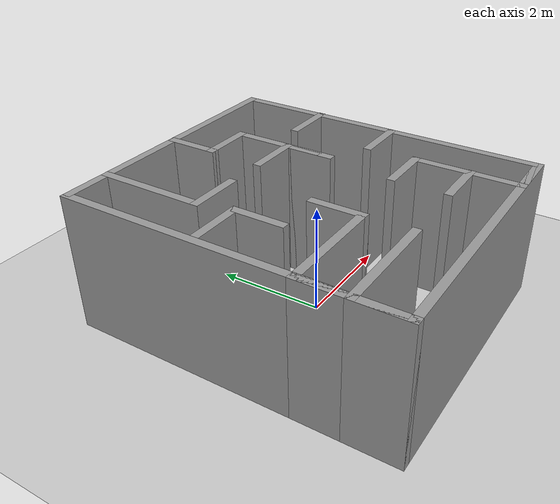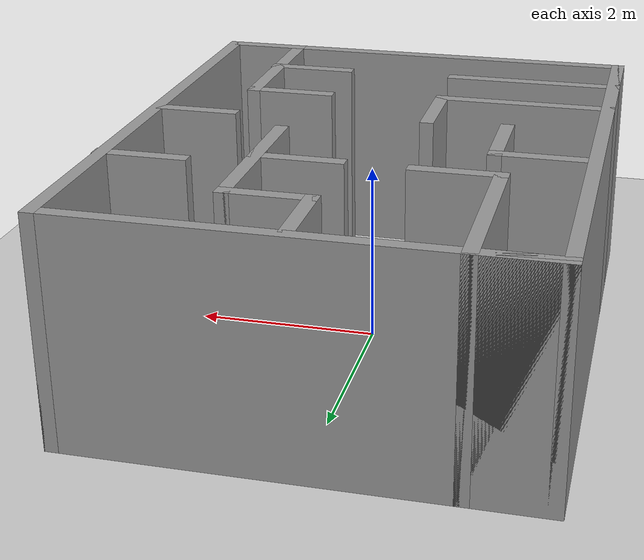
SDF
<sdf version="1.6">
 <world name="default">
  <light name="sun" type="directional">
   <pose>0 0 10 0 -0 0</pose>
   <diffuse>0.8 0.8 0.8 1</diffuse>
   <specular>0.2 0.2 0.2 1</specular>
   <attenuation>
    <range>1000</range>
    <constant>0.9</constant>
    <linear>0.01</linear>
    <quadratic>0.001</quadratic>
   </attenuation>
   <direction>-0.5 0.1 -0.9</direction>
  </light>
  <model name="ground_plane">
   <static>1</static>
   <link name="link">
    <collision name="collision">
     <geometry><plane><normal>0 0 1</normal><size>100 100</size></plane></geometry>
     <surface><friction><ode><mu>100</mu><mu2>50</mu2></ode></friction></surface>
    </collision>
    <visual name="visual">
     <cast_shadows>0</cast_shadows>
     <geometry><plane><normal>0 0 1</normal><size>100 100</size></plane></geometry>
     <material>
      <script><uri>file://media/materials/scripts/gazebo.material</uri><name>Gazebo/Grey</name></script>
     </material>
    </visual>
   </link>
  </model>
  <gravity>0 0 -9.8</gravity>
  <magnetic_field>6e-06 2.3e-05 -4.2e-05</magnetic_field>
  <atmosphere type="adiabatic"/>
  <physics name="default_physics" default="0" type="ode">
   <max_step_size>0.001</max_step_size>
   <real_time_factor>1</real_time_factor>
   <real_time_update_rate>1000</real_time_update_rate>
  </physics>
  <scene><ambient>0.4 0.4 0.4 1</ambient><background>0.7 0.7 0.7 1</background><shadows>1</shadows></scene>
  <spherical_coordinates>
   <surface_model>EARTH_WGS84</surface_model>
   <latitude_deg>0</latitude_deg>
   <longitude_deg>0</longitude_deg>
   <elevation>0</elevation>
   <heading_deg>0</heading_deg>
  </spherical_coordinates>
  <model name="building2">
   <pose>0.039114 0.111863 0 0 -0 0</pose>
   <link name="Wall_0">
    <collision name="Wall_0_Collision">
     <geometry><box><size>5 0.15 2.5</size></box></geometry>
     <pose>0 0 1.25 0 -0 0</pose>
    </collision>
    <visual name="Wall_0_Visual">
     <pose>0 0 1.25 0 -0 0</pose>
     <geometry><box><size>5 0.15 2.5</size></box></geometry>
     <material>
      <script><uri>file://media/materials/scripts/gazebo.material</uri><name>Gazebo/Grey</name></script>
      <ambient>1 1 1 1</ambient>
     </material>
     <meta><layer>0</layer></meta>
    </visual>
    <pose>-0.006356 2.925 0 0 -0 0</pose>
   </link>
   <link name="Wall_1">
    <collision name="Wall_1_Collision">
     <geometry><box><size>6 0.15 2.5</size></box></geometry>
     <pose>0 0 1.25 0 -0 0</pose>
    </collision>
    <visual name="Wall_1_Visual">
     <pose>0 0 1.25 0 -0 0</pose>
     <geometry><box><size>6 0.15 2.5</size></box></geometry>
     <material>
      <script><uri>file://media/materials/scripts/gazebo.material</uri><name>Gazebo/Grey</name></script>
      <ambient>1 1 1 1</ambient>
     </material>
     <meta><layer>0</layer></meta>
    </visual>
    <pose>2.41864 0 0 0 0 -1.5708</pose>
   </link>
   <link name="Wall_10">
    <collision name="Wall_10_Collision">
     <geometry><box><size>2 0.15 2.5</size></box></geometry>
     <pose>0 0 1.25 0 -0 0</pose>
    </collision>
    <visual name="Wall_10_Visual">
     <pose>0 0 1.25 0 -0 0</pose>
     <geometry><box><size>2 0.15 2.5</size></box></geometry>
     <material>
      <script><uri>file://media/materials/scripts/gazebo.material</uri><name>Gazebo/Grey</name></script>
      <ambient>1 1 1 1</ambient>
     </material>
     <meta><layer>0</layer></meta>
    </visual>
    <pose>-1.50636 -2.075 0 0 -0 0</pose>
   </link>
   <link name="Wall_12">
    <collision name="Wall_12_Collision">
     <geometry><box><size>1 0.15 2.5</size></box></geometry>
     <pose>0 0 1.25 0 -0 0</pose>
    </collision>
    <visual name="Wall_12_Visual">
     <pose>0 0 1.25 0 -0 0</pose>
     <geometry><box><size>1 0.15 2.5</size></box></geometry>
     <material>
      <script><uri>file://media/materials/scripts/gazebo.material</uri><name>Gazebo/Grey</name></script>
      <ambient>1 1 1 1</ambient>
     </material>
     <meta><layer>0</layer></meta>
    </visual>
    <pose>-2.43136 -1.65 0 0 -0 1.5708</pose>
   </link>
   <link name="Wall_13">
    <collision name="Wall_13_Collision">
     <geometry><box><size>2 0.15 2.5</size></box></geometry>
     <pose>0 0 1.25 0 -0 0</pose>
    </collision>
    <visual name="Wall_13_Visual">
     <pose>0 0 1.25 0 -0 0</pose>
     <geometry><box><size>2 0.15 2.5</size></box></geometry>
     <material>
      <script><uri>file://media/materials/scripts/gazebo.material</uri><name>Gazebo/Grey</name></script>
      <ambient>1 1 1 1</ambient>
     </material>
     <meta><layer>0</layer></meta>
    </visual>
    <pose>-1.50636 -1.225 0 0 -0 0</pose>
   </link>
   <link name="Wall_14">
    <collision name="Wall_14_Collision">
     <geometry><box><size>1 0.15 2.5</size></box></geometry>
     <pose>0 0 1.25 0 -0 0</pose>
    </collision>
    <visual name="Wall_14_Visual">
     <pose>0 0 1.25 0 -0 0</pose>
     <geometry><box><size>1 0.15 2.5</size></box></geometry>
     <material>
      <script><uri>file://media/materials/scripts/gazebo.material</uri><name>Gazebo/Grey</name></script>
      <ambient>1 1 1 1</ambient>
     </material>
     <meta><layer>0</layer></meta>
    </visual>
    <pose>-0.581356 -0.8 0 0 -0 1.5708</pose>
   </link>
   <link name="Wall_2">
    <collision name="Wall_2_Collision">
     <geometry><box><size>5 0.15 2.5</size></box></geometry>
     <pose>0 0 1.25 0 -0 0</pose>
    </collision>
    <visual name="Wall_2_Visual">
     <pose>0 0 1.25 0 -0 0</pose>
     <geometry><box><size>5 0.15 2.5</size></box></geometry>
     <material>
      <script><uri>file://media/materials/scripts/gazebo.material</uri><name>Gazebo/Grey</name></script>
      <ambient>1 1 1 1</ambient>
     </material>
     <meta><layer>0</layer></meta>
    </visual>
    <pose>-0.006356 -2.925 0 0 -0 3.14159</pose>
   </link>
   <link name="Wall_20">
    <collision name="Wall_20_Collision">
     <geometry><box><size>1 0.15 2.5</size></box></geometry>
     <pose>0 0 1.25 0 -0 0</pose>
    </collision>
    <visual name="Wall_20_Visual">
     <pose>0 0 1.25 0 -0 0</pose>
     <geometry><box><size>1 0.15 2.5</size></box></geometry>
     <material>
      <script><uri>file://media/materials/scripts/gazebo.material</uri><name>Gazebo/Grey</name></script>
      <ambient>1 1 1 1</ambient>
     </material>
     <meta><layer>0</layer></meta>
    </visual>
    <pose>1.99364 -2.925 0 0 -0 3.14159</pose>
   </link>
   <link name="Wall_21">
    <collision name="Wall_21_Collision">
     <geometry><box><size>2 0.15 2.5</size></box></geometry>
     <pose>0 0 1.25 0 -0 0</pose>
    </collision>
    <visual name="Wall_21_Visual">
     <pose>0 0 1.25 0 -0 0</pose>
     <geometry><box><size>2 0.15 2.5</size></box></geometry>
     <material>
      <script><uri>file://media/materials/scripts/gazebo.material</uri><name>Gazebo/Grey</name></script>
      <ambient>1 1 1 1</ambient>
     </material>
     <meta><layer>0</layer></meta>
    </visual>
    <pose>1.56864 -2 0 0 -0 1.5708</pose>
   </link>
   <link name="Wall_22">
    <collision name="Wall_22_Collision">
     <geometry><box><size>1 0.15 2.5</size></box></geometry>
     <pose>0 0 1.25 0 -0 0</pose>
    </collision>
    <visual name="Wall_22_Visual">
     <pose>0 0 1.25 0 -0 0</pose>
     <geometry><box><size>1 0.15 2.5</size></box></geometry>
     <material>
      <script><uri>file://media/materials/scripts/gazebo.material</uri><name>Gazebo/Grey</name></script>
      <ambient>1 1 1 1</ambient>
     </material>
     <meta><layer>0</layer></meta>
    </visual>
    <pose>1.14365 -1.075 0 0 -0 3.14159</pose>
   </link>
   <link name="Wall_3">
    <collision name="Wall_3_Collision">
     <geometry><box><size>6 0.15 2.5</size></box></geometry>
     <pose>0 0 1.25 0 -0 0</pose>
    </collision>
    <visual name="Wall_3_Visual">
     <pose>0 0 1.25 0 -0 0</pose>
     <geometry><box><size>6 0.15 2.5</size></box></geometry>
     <material>
      <script><uri>file://media/materials/scripts/gazebo.material</uri><name>Gazebo/Grey</name></script>
      <ambient>1 1 1 1</ambient>
     </material>
     <meta><layer>0</layer></meta>
    </visual>
    <pose>-2.43136 0 0 0 -0 1.5708</pose>
   </link>
   <link name="Wall_33">
    <collision name="Wall_33_Collision">
     <geometry><box><size>1 0.15 2.5</size></box></geometry>
     <pose>0 0 1.25 0 -0 0</pose>
    </collision>
    <visual name="Wall_33_Visual">
     <pose>0 0 1.25 0 -0 0</pose>
     <geometry><box><size>1 0.15 2.5</size></box></geometry>
     <material>
      <script><uri>file://media/materials/scripts/gazebo.material</uri><name>Gazebo/Grey</name></script>
      <ambient>1 1 1 1</ambient>
     </material>
     <meta><layer>0</layer></meta>
    </visual>
    <pose>0.035979 2.48883 0 0 0 -1.5708</pose>
   </link>
   <link name="Wall_34">
    <collision name="Wall_34_Collision">
     <geometry><box><size>1 0.15 2.5</size></box></geometry>
     <pose>0 0 1.25 0 -0 0</pose>
    </collision>
    <visual name="Wall_34_Visual">
     <pose>0 0 1.25 0 -0 0</pose>
     <geometry><box><size>1 0.15 2.5</size></box></geometry>
     <material>
      <script><uri>file://media/materials/scripts/gazebo.material</uri><name>Gazebo/Grey</name></script>
      <ambient>1 1 1 1</ambient>
     </material>
     <meta><layer>0</layer></meta>
    </visual>
    <pose>0.460979 2.06383 0 0 -0 0</pose>
   </link>
   <link name="Wall_36">
    <collision name="Wall_36_Collision">
     <geometry><box><size>2 0.15 2.5</size></box></geometry>
     <pose>0 0 1.25 0 -0 0</pose>
    </collision>
    <visual name="Wall_36_Visual">
     <pose>0 0 1.25 0 -0 0</pose>
     <geometry><box><size>2 0.15 2.5</size></box></geometry>
     <material>
      <script><uri>file://media/materials/scripts/gazebo.material</uri><name>Gazebo/Grey</name></script>
      <ambient>1 1 1 1</ambient>
     </material>
     <meta><layer>0</layer></meta>
    </visual>
    <pose>0.885979 1.13883 0 0 0 -1.5708</pose>
   </link>
   <link name="Wall_39">
    <collision name="Wall_39_Collision">
     <geometry><box><size>1 0.15 2.5</size></box></geometry>
     <pose>0 0 1.25 0 -0 0</pose>
    </collision>
    <visual name="Wall_39_Visual">
     <pose>0 0 1.25 0 -0 0</pose>
     <geometry><box><size>1 0.15 2.5</size></box></geometry>
     <material>
      <script><uri>file://media/materials/scripts/gazebo.material</uri><name>Gazebo/Grey</name></script>
      <ambient>1 1 1 1</ambient>
     </material>
     <meta><layer>0</layer></meta>
    </visual>
    <pose>1.15467 -2.05182 0 0 -0 3.14159</pose>
   </link>
   <link name="Wall_41">
    <collision name="Wall_41_Collision">
     <geometry><box><size>1 0.15 2.5</size></box></geometry>
     <pose>0 0 1.25 0 -0 0</pose>
    </collision>
    <visual name="Wall_41_Visual">
     <pose>0 0 1.25 0 -0 0</pose>
     <geometry><box><size>1 0.15 2.5</size></box></geometry>
     <material>
      <script><uri>file://media/materials/scripts/gazebo.material</uri><name>Gazebo/Grey</name></script>
      <ambient>1 1 1 1</ambient>
     </material>
     <meta><layer>0</layer></meta>
    </visual>
    <pose>0.885979 0.638834 0 0 -0 1.5708</pose>
   </link>
   <link name="Wall_42">
    <collision name="Wall_42_Collision">
     <geometry><box><size>1 0.15 2.5</size></box></geometry>
     <pose>0 0 1.25 0 -0 0</pose>
    </collision>
    <visual name="Wall_42_Visual">
     <pose>0 0 1.25 0 -0 0</pose>
     <geometry><box><size>1 0.15 2.5</size></box></geometry>
     <material>
      <script><uri>file://media/materials/scripts/gazebo.material</uri><name>Gazebo/Grey</name></script>
      <ambient>1 1 1 1</ambient>
     </material>
     <meta><layer>0</layer></meta>
    </visual>
    <pose>0.460979 1.06383 0 0 -0 3.14159</pose>
   </link>
   <link name="Wall_45">
    <collision name="Wall_45_Collision">
     <geometry><box><size>1 0.15 2.5</size></box></geometry>
     <pose>0 0 1.25 0 -0 0</pose>
    </collision>
    <visual name="Wall_45_Visual">
     <pose>0 0 1.25 0 -0 0</pose>
     <geometry><box><size>1 0.15 2.5</size></box></geometry>
     <material>
      <script><uri>file://media/materials/scripts/gazebo.material</uri><name>Gazebo/Grey</name></script>
      <ambient>1 1 1 1</ambient>
     </material>
     <meta><layer>0</layer></meta>
    </visual>
    <pose>-1.43136 0.05 0 0 -0 1.5708</pose>
   </link>
   <link name="Wall_5">
    <collision name="Wall_5_Collision">
     <geometry><box><size>1 0.15 2.5</size></box></geometry>
     <pose>0 0 1.25 0 -0 0</pose>
    </collision>
    <visual name="Wall_5_Visual">
     <pose>0 0 1.25 0 -0 0</pose>
     <geometry><box><size>1 0.15 2.5</size></box></geometry>
     <material>
      <script><uri>file://media/materials/scripts/gazebo.material</uri><name>Gazebo/Grey</name></script>
      <ambient>1 1 1 1</ambient>
     </material>
     <meta><layer>0</layer></meta>
    </visual>
    <pose>-2.00636 2.925 0 0 -0 0</pose>
   </link>
   <link name="Wall_51">
    <collision name="Wall_51_Collision">
     <geometry><box><size>1 0.15 2.5</size></box></geometry>
     <pose>0 0 1.25 0 -0 0</pose>
    </collision>
    <visual name="Wall_51_Visual">
     <pose>0 0 1.25 0 -0 0</pose>
     <geometry><box><size>1 0.15 2.5</size></box></geometry>
     <material>
      <script><uri>file://media/materials/scripts/gazebo.material</uri><name>Gazebo/Grey</name></script>
      <ambient>1 1 1 1</ambient>
     </material>
     <meta><layer>0</layer></meta>
    </visual>
    <pose>-1.85635 0.475 0 0 -0 3.14159</pose>
   </link>
   <link name="Wall_53">
    <collision name="Wall_53_Collision">
     <geometry><box><size>1 0.15 2.5</size></box></geometry>
     <pose>0 0 1.25 0 -0 0</pose>
    </collision>
    <visual name="Wall_53_Visual">
     <pose>0 0 1.25 0 -0 0</pose>
     <geometry><box><size>1 0.15 2.5</size></box></geometry>
     <material>
      <script><uri>file://media/materials/scripts/gazebo.material</uri><name>Gazebo/Grey</name></script>
      <ambient>1 1 1 1</ambient>
     </material>
     <meta><layer>0</layer></meta>
    </visual>
    <pose>2.00636 1.31692 0 0 -0 3.14159</pose>
   </link>
   <link name="Wall_58">
    <collision name="Wall_58_Collision">
     <geometry><box><size>1 0.15 2.5</size></box></geometry>
     <pose>0 0 1.25 0 -0 0</pose>
    </collision>
    <visual name="Wall_58_Visual">
     <pose>0 0 1.25 0 -0 0</pose>
     <geometry><box><size>1 0.15 2.5</size></box></geometry>
     <material>
      <script><uri>file://media/materials/scripts/gazebo.material</uri><name>Gazebo/Grey</name></script>
      <ambient>1 1 1 1</ambient>
     </material>
     <meta><layer>0</layer></meta>
    </visual>
    <pose>1.99115 -0.196356 0 0 -0 3.14159</pose>
   </link>
   <link name="Wall_6">
    <collision name="Wall_6_Collision">
     <geometry><box><size>2 0.15 2.5</size></box></geometry>
     <pose>0 0 1.25 0 -0 0</pose>
    </collision>
    <visual name="Wall_6_Visual">
     <pose>0 0 1.25 0 -0 0</pose>
     <geometry><box><size>2 0.15 2.5</size></box></geometry>
     <material>
      <script><uri>file://media/materials/scripts/gazebo.material</uri><name>Gazebo/Grey</name></script>
      <ambient>1 1 1 1</ambient>
     </material>
     <meta><layer>0</layer></meta>
    </visual>
    <pose>-1.58136 2 0 0 0 -1.5708</pose>
   </link>
   <link name="Wall_7">
    <collision name="Wall_7_Collision">
     <geometry><box><size>1 0.15 2.5</size></box></geometry>
     <pose>0 0 1.25 0 -0 0</pose>
    </collision>
    <visual name="Wall_7_Visual">
     <pose>0 0 1.25 0 -0 0</pose>
     <geometry><box><size>1 0.15 2.5</size></box></geometry>
     <material>
      <script><uri>file://media/materials/scripts/gazebo.material</uri><name>Gazebo/Grey</name></script>
      <ambient>1 1 1 1</ambient>
     </material>
     <meta><layer>0</layer></meta>
    </visual>
    <pose>-1.15636 1.075 0 0 -0 0</pose>
   </link>
   <link name="Wall_9">
    <collision name="Wall_9_Collision">
     <geometry><box><size>1 0.15 2.5</size></box></geometry>
     <pose>0 0 1.25 0 -0 0</pose>
    </collision>
    <visual name="Wall_9_Visual">
     <pose>0 0 1.25 0 -0 0</pose>
     <geometry><box><size>1 0.15 2.5</size></box></geometry>
     <material>
      <script><uri>file://media/materials/scripts/gazebo.material</uri><name>Gazebo/Grey</name></script>
      <ambient>1 1 1 1</ambient>
     </material>
     <meta><layer>0</layer></meta>
    </visual>
    <pose>-2.43136 -2.5 0 0 -0 1.5708</pose>
   </link>
   <static>1</static>
  </model>
 </world>
</sdf>
